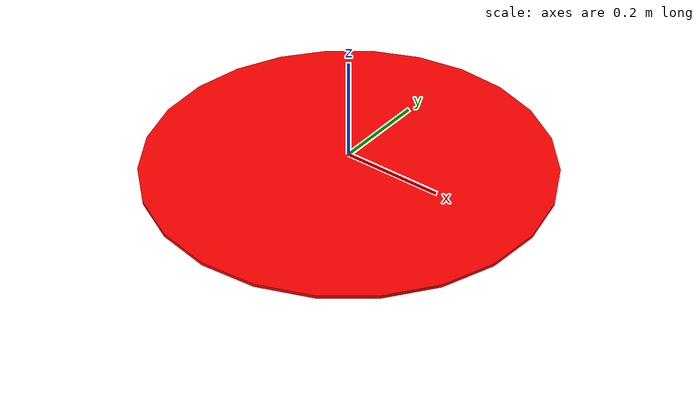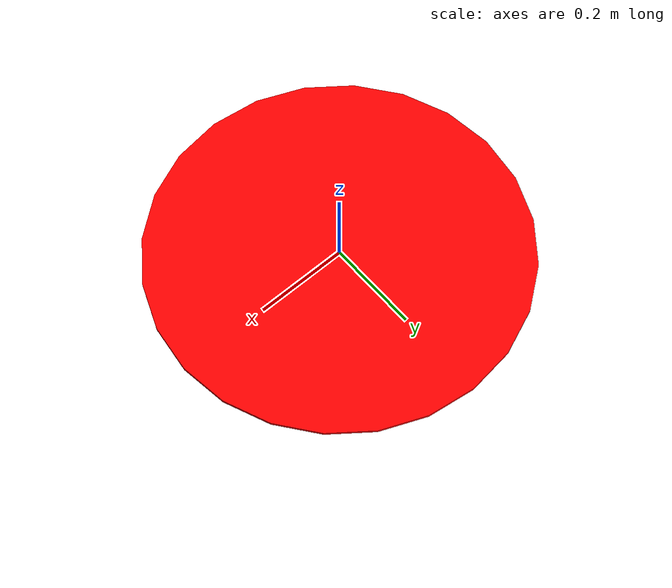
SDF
<?xml version="1.0"?>
<sdf version="1.8">
    <model name='target'>

        <link name='spot'>
            <gravity>true</gravity>
            <inertial>
                <mass>1</mass>
                <inertia>
                    <ixx>0.043333</ixx>
                    <ixy>0</ixy>
                    <ixz>0</ixz>
                    <iyy>0.043333</iyy>
                    <iyz>0</iyz>
                    <izz>0.08</izz>
                </inertia>
                <auto>true</auto>
            </inertial>
            <visual name='visual'>
                <geometry>
                    <cylinder>
                        <radius>0.4</radius>
                        <length>0.006</length>
                    </cylinder>
                </geometry>
                <material>
                    <ambient>1.0 0.0 0.0 1</ambient>
                    <diffuse>1.0 0.0 0.0 1</diffuse>
                    <specular>1.0 0.0 0.0 1</specular>
                </material>
            </visual>
            <collision name='collision'>
                <geometry>
                    <cylinder>
                        <radius>0.4</radius>
                        <length>0.006</length>
                    </cylinder>
                </geometry>
            </collision>
        </link>

    </model>

</sdf>
